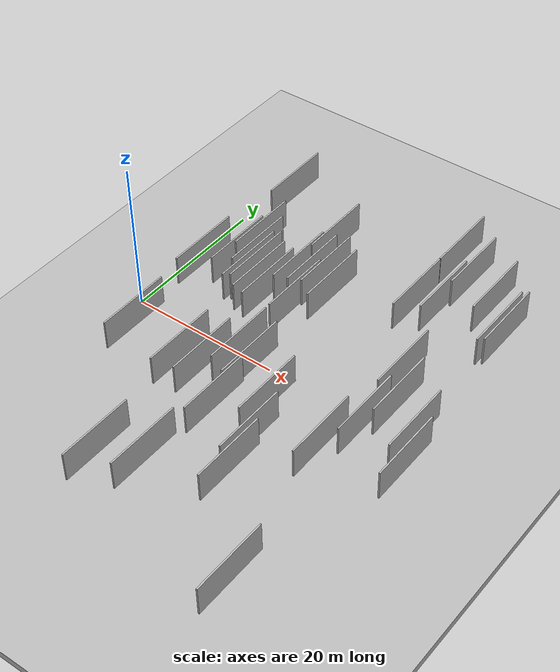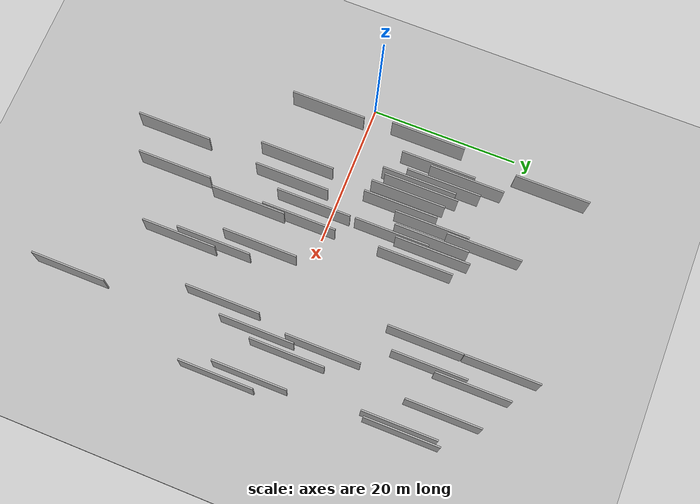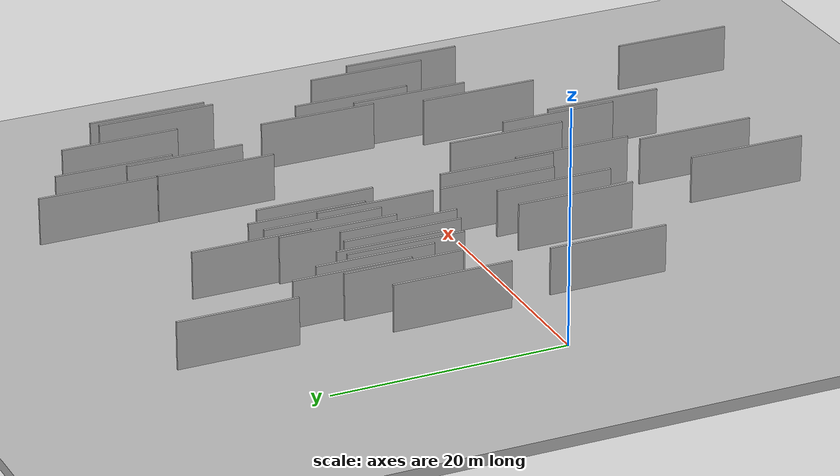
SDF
<?xml version="1.0" encoding="utf-8"?>

<sdf version="1.6">

   <world name="default">

      <gui fullscreen="0">

         <camera name="user_camera">

            <pose>-15 0 4.57585 0 0 0</pose>

            <view_controller>orbit</view_controller>

         </camera>

      </gui>

      <scene>

         <sky>

           <clouds>

             <speed>12</speed>

           </clouds>

         </sky>

         <ambient>0.4 0.4 0.4 1</ambient>

         <background>0.7 0.7 0.7 1</background>

         <shadows>1</shadows>

      </scene>

      <gravity>0 0 -9.8066</gravity>

      <magnetic_field>6e-06 2.3e-05 -4.2e-05</magnetic_field>

      <physics default="0" name="default_physics" type="ode">

         <ode>

            <solver>

               <type>quick</type>

               <iters>10</iters>

               <sor>1.0</sor>

               <use_dynamic_moi_rescaling>0</use_dynamic_moi_rescaling>

            </solver>

            <constraints>

               <cfm>0</cfm>

               <erp>0.2</erp>

               <contact_max_correcting_vel>100</contact_max_correcting_vel>

               <contact_surface_layer>0.001</contact_surface_layer>

            </constraints>

         </ode>

         <max_step_size>0.004</max_step_size>

         <real_time_factor>1</real_time_factor>

         <real_time_update_rate>250</real_time_update_rate>

      </physics>

      <light name="sun" type="directional">

         <cast_shadows>1</cast_shadows>

         <pose>0 0 10 0 0 0</pose>

         <diffuse>0.8 0.8 0.8 1</diffuse>

         <specular>0.2 0.2 0.2 1</specular>

         <attenuation>

            <range>1000</range>

            <constant>0.9</constant>

            <linear>0.01</linear>

            <quadratic>0.001</quadratic>

         </attenuation>

         <direction>-0.5 0.1 -0.9</direction>

      </light>

      <include>

         <name>ground_plane_1</name>

         <uri>model://HANNAS_ground_plane</uri>

         <pose>0 0 0  0 0 0</pose>

      </include>

      <include>

         <name>ground_plane_2</name>

         <uri>model://HANNAS_ground_plane</uri>

         <pose>100 0 0  0 0 0</pose>

      </include>

      <model name="HANNAS_wall_1">

         <static>1</static>

         <pose frame="">27.5334 -16.5251 2.5 0.000000 0.000000 1.570796</pose>

         <link name="link">

            <pose frame="">0 0 2.00 0 0 0</pose>

            <collision name="collision">

               <geometry>

                  <box>

                     <size>10.00 0.2 4.00</size>

                  </box>

               </geometry>

               <max_contacts>10</max_contacts>

               <surface>

                  <contact>

                     <ode/>

                  </contact>

                  <bounce/>

                  <friction>

                     <torsional>

                        <ode/>

                     </torsional>

                     <ode/>

                  </friction>

               </surface>

            </collision>

            <visual name="visual">

               <cast_shadows>0</cast_shadows>

               <geometry>

                  <box>

                     <size>10.00 0.2 4.00</size>

                  </box>

               </geometry>

               <material>

                  <script>

                     <uri>model://HANNAS_wall/materials/scripts</uri>

                     <uri>model://HANNAS_wall/materials/textures</uri>

                     <name>vrc/HANNAS_wall</name>

                  </script>

               </material>

            </visual>

            <self_collide>0</self_collide>

            <enable_wind>0</enable_wind>

            <kinematic>0</kinematic>

         </link>

      </model>

      <model name="HANNAS_wall_2">

         <static>1</static>

         <pose frame="">14.3433 -22.9168 2.5 0.000000 0.000000 1.570796</pose>

         <link name="link">

            <pose frame="">0 0 2.00 0 0 0</pose>

            <collision name="collision">

               <geometry>

                  <box>

                     <size>10.00 0.2 4.00</size>

                  </box>

               </geometry>

               <max_contacts>10</max_contacts>

               <surface>

                  <contact>

                     <ode/>

                  </contact>

                  <bounce/>

                  <friction>

                     <torsional>

                        <ode/>

                     </torsional>

                     <ode/>

                  </friction>

               </surface>

            </collision>

            <visual name="visual">

               <cast_shadows>0</cast_shadows>

               <geometry>

                  <box>

                     <size>10.00 0.2 4.00</size>

                  </box>

               </geometry>

               <material>

                  <script>

                     <uri>model://HANNAS_wall/materials/scripts</uri>

                     <uri>model://HANNAS_wall/materials/textures</uri>

                     <name>vrc/HANNAS_wall</name>

                  </script>

               </material>

            </visual>

            <self_collide>0</self_collide>

            <enable_wind>0</enable_wind>

            <kinematic>0</kinematic>

         </link>

      </model>

      <model name="HANNAS_wall_3">

         <static>1</static>

         <pose frame="">32.1765 24.7229 2.5 0.000000 0.000000 1.570796</pose>

         <link name="link">

            <pose frame="">0 0 2.00 0 0 0</pose>

            <collision name="collision">

               <geometry>

                  <box>

                     <size>10.00 0.2 4.00</size>

                  </box>

               </geometry>

               <max_contacts>10</max_contacts>

               <surface>

                  <contact>

                     <ode/>

                  </contact>

                  <bounce/>

                  <friction>

                     <torsional>

                        <ode/>

                     </torsional>

                     <ode/>

                  </friction>

               </surface>

            </collision>

            <visual name="visual">

               <cast_shadows>0</cast_shadows>

               <geometry>

                  <box>

                     <size>10.00 0.2 4.00</size>

                  </box>

               </geometry>

               <material>

                  <script>

                     <uri>model://HANNAS_wall/materials/scripts</uri>

                     <uri>model://HANNAS_wall/materials/textures</uri>

                     <name>vrc/HANNAS_wall</name>

                  </script>

               </material>

            </visual>

            <self_collide>0</self_collide>

            <enable_wind>0</enable_wind>

            <kinematic>0</kinematic>

         </link>

      </model>

      <model name="HANNAS_wall_4">

         <static>1</static>

         <pose frame="">9.5875 9.3693 2.5 0.000000 0.000000 1.570796</pose>

         <link name="link">

            <pose frame="">0 0 2.00 0 0 0</pose>

            <collision name="collision">

               <geometry>

                  <box>

                     <size>10.00 0.2 4.00</size>

                  </box>

               </geometry>

               <max_contacts>10</max_contacts>

               <surface>

                  <contact>

                     <ode/>

                  </contact>

                  <bounce/>

                  <friction>

                     <torsional>

                        <ode/>

                     </torsional>

                     <ode/>

                  </friction>

               </surface>

            </collision>

            <visual name="visual">

               <cast_shadows>0</cast_shadows>

               <geometry>

                  <box>

                     <size>10.00 0.2 4.00</size>

                  </box>

               </geometry>

               <material>

                  <script>

                     <uri>model://HANNAS_wall/materials/scripts</uri>

                     <uri>model://HANNAS_wall/materials/textures</uri>

                     <name>vrc/HANNAS_wall</name>

                  </script>

               </material>

            </visual>

            <self_collide>0</self_collide>

            <enable_wind>0</enable_wind>

            <kinematic>0</kinematic>

         </link>

      </model>

      <model name="HANNAS_wall_5">

         <static>1</static>

         <pose frame="">36.6109 22.4675 2.5 0.000000 0.000000 1.570796</pose>

         <link name="link">

            <pose frame="">0 0 2.00 0 0 0</pose>

            <collision name="collision">

               <geometry>

                  <box>

                     <size>10.00 0.2 4.00</size>

                  </box>

               </geometry>

               <max_contacts>10</max_contacts>

               <surface>

                  <contact>

                     <ode/>

                  </contact>

                  <bounce/>

                  <friction>

                     <torsional>

                        <ode/>

                     </torsional>

                     <ode/>

                  </friction>

               </surface>

            </collision>

            <visual name="visual">

               <cast_shadows>0</cast_shadows>

               <geometry>

                  <box>

                     <size>10.00 0.2 4.00</size>

                  </box>

               </geometry>

               <material>

                  <script>

                     <uri>model://HANNAS_wall/materials/scripts</uri>

                     <uri>model://HANNAS_wall/materials/textures</uri>

                     <name>vrc/HANNAS_wall</name>

                  </script>

               </material>

            </visual>

            <self_collide>0</self_collide>

            <enable_wind>0</enable_wind>

            <kinematic>0</kinematic>

         </link>

      </model>

      <model name="HANNAS_wall_6">

         <static>1</static>

         <pose frame="">24.8940 -6.5168 2.5 0.000000 0.000000 1.570796</pose>

         <link name="link">

            <pose frame="">0 0 2.00 0 0 0</pose>

            <collision name="collision">

               <geometry>

                  <box>

                     <size>10.00 0.2 4.00</size>

                  </box>

               </geometry>

               <max_contacts>10</max_contacts>

               <surface>

                  <contact>

                     <ode/>

                  </contact>

                  <bounce/>

                  <friction>

                     <torsional>

                        <ode/>

                     </torsional>

                     <ode/>

                  </friction>

               </surface>

            </collision>

            <visual name="visual">

               <cast_shadows>0</cast_shadows>

               <geometry>

                  <box>

                     <size>10.00 0.2 4.00</size>

                  </box>

               </geometry>

               <material>

                  <script>

                     <uri>model://HANNAS_wall/materials/scripts</uri>

                     <uri>model://HANNAS_wall/materials/textures</uri>

                     <name>vrc/HANNAS_wall</name>

                  </script>

               </material>

            </visual>

            <self_collide>0</self_collide>

            <enable_wind>0</enable_wind>

            <kinematic>0</kinematic>

         </link>

      </model>

      <model name="HANNAS_wall_7">

         <static>1</static>

         <pose frame="">35.3294 -2.6128 2.5 0.000000 0.000000 1.570796</pose>

         <link name="link">

            <pose frame="">0 0 2.00 0 0 0</pose>

            <collision name="collision">

               <geometry>

                  <box>

                     <size>10.00 0.2 4.00</size>

                  </box>

               </geometry>

               <max_contacts>10</max_contacts>

               <surface>

                  <contact>

                     <ode/>

                  </contact>

                  <bounce/>

                  <friction>

                     <torsional>

                        <ode/>

                     </torsional>

                     <ode/>

                  </friction>

               </surface>

            </collision>

            <visual name="visual">

               <cast_shadows>0</cast_shadows>

               <geometry>

                  <box>

                     <size>10.00 0.2 4.00</size>

                  </box>

               </geometry>

               <material>

                  <script>

                     <uri>model://HANNAS_wall/materials/scripts</uri>

                     <uri>model://HANNAS_wall/materials/textures</uri>

                     <name>vrc/HANNAS_wall</name>

                  </script>

               </material>

            </visual>

            <self_collide>0</self_collide>

            <enable_wind>0</enable_wind>

            <kinematic>0</kinematic>

         </link>

      </model>

      <model name="HANNAS_wall_8">

         <static>1</static>

         <pose frame="">14.5421 12.9286 2.5 0.000000 0.000000 1.570796</pose>

         <link name="link">

            <pose frame="">0 0 2.00 0 0 0</pose>

            <collision name="collision">

               <geometry>

                  <box>

                     <size>10.00 0.2 4.00</size>

                  </box>

               </geometry>

               <max_contacts>10</max_contacts>

               <surface>

                  <contact>

                     <ode/>

                  </contact>

                  <bounce/>

                  <friction>

                     <torsional>

                        <ode/>

                     </torsional>

                     <ode/>

                  </friction>

               </surface>

            </collision>

            <visual name="visual">

               <cast_shadows>0</cast_shadows>

               <geometry>

                  <box>

                     <size>10.00 0.2 4.00</size>

                  </box>

               </geometry>

               <material>

                  <script>

                     <uri>model://HANNAS_wall/materials/scripts</uri>

                     <uri>model://HANNAS_wall/materials/textures</uri>

                     <name>vrc/HANNAS_wall</name>

                  </script>

               </material>

            </visual>

            <self_collide>0</self_collide>

            <enable_wind>0</enable_wind>

            <kinematic>0</kinematic>

         </link>

      </model>

      <model name="HANNAS_wall_9">

         <static>1</static>

         <pose frame="">3.3125 8.3041 2.5 0.000000 0.000000 1.570796</pose>

         <link name="link">

            <pose frame="">0 0 2.00 0 0 0</pose>

            <collision name="collision">

               <geometry>

                  <box>

                     <size>10.00 0.2 4.00</size>

                  </box>

               </geometry>

               <max_contacts>10</max_contacts>

               <surface>

                  <contact>

                     <ode/>

                  </contact>

                  <bounce/>

                  <friction>

                     <torsional>

                        <ode/>

                     </torsional>

                     <ode/>

                  </friction>

               </surface>

            </collision>

            <visual name="visual">

               <cast_shadows>0</cast_shadows>

               <geometry>

                  <box>

                     <size>10.00 0.2 4.00</size>

                  </box>

               </geometry>

               <material>

                  <script>

                     <uri>model://HANNAS_wall/materials/scripts</uri>

                     <uri>model://HANNAS_wall/materials/textures</uri>

                     <name>vrc/HANNAS_wall</name>

                  </script>

               </material>

            </visual>

            <self_collide>0</self_collide>

            <enable_wind>0</enable_wind>

            <kinematic>0</kinematic>

         </link>

      </model>

      <model name="HANNAS_wall_10">

         <static>1</static>

         <pose frame="">11.7947 8.6516 2.5 0.000000 0.000000 1.570796</pose>

         <link name="link">

            <pose frame="">0 0 2.00 0 0 0</pose>

            <collision name="collision">

               <geometry>

                  <box>

                     <size>10.00 0.2 4.00</size>

                  </box>

               </geometry>

               <max_contacts>10</max_contacts>

               <surface>

                  <contact>

                     <ode/>

                  </contact>

                  <bounce/>

                  <friction>

                     <torsional>

                        <ode/>

                     </torsional>

                     <ode/>

                  </friction>

               </surface>

            </collision>

            <visual name="visual">

               <cast_shadows>0</cast_shadows>

               <geometry>

                  <box>

                     <size>10.00 0.2 4.00</size>

                  </box>

               </geometry>

               <material>

                  <script>

                     <uri>model://HANNAS_wall/materials/scripts</uri>

                     <uri>model://HANNAS_wall/materials/textures</uri>

                     <name>vrc/HANNAS_wall</name>

                  </script>

               </material>

            </visual>

            <self_collide>0</self_collide>

            <enable_wind>0</enable_wind>

            <kinematic>0</kinematic>

         </link>

      </model>

      <model name="HANNAS_wall_11">

         <static>1</static>

         <pose frame="">14.8966 20.0811 2.5 0.000000 0.000000 1.570796</pose>

         <link name="link">

            <pose frame="">0 0 2.00 0 0 0</pose>

            <collision name="collision">

               <geometry>

                  <box>

                     <size>10.00 0.2 4.00</size>

                  </box>

               </geometry>

               <max_contacts>10</max_contacts>

               <surface>

                  <contact>

                     <ode/>

                  </contact>

                  <bounce/>

                  <friction>

                     <torsional>

                        <ode/>

                     </torsional>

                     <ode/>

                  </friction>

               </surface>

            </collision>

            <visual name="visual">

               <cast_shadows>0</cast_shadows>

               <geometry>

                  <box>

                     <size>10.00 0.2 4.00</size>

                  </box>

               </geometry>

               <material>

                  <script>

                     <uri>model://HANNAS_wall/materials/scripts</uri>

                     <uri>model://HANNAS_wall/materials/textures</uri>

                     <name>vrc/HANNAS_wall</name>

                  </script>

               </material>

            </visual>

            <self_collide>0</self_collide>

            <enable_wind>0</enable_wind>

            <kinematic>0</kinematic>

         </link>

      </model>

      <model name="HANNAS_wall_12">

         <static>1</static>

         <pose frame="">19.8237 12.6126 2.5 0.000000 0.000000 1.570796</pose>

         <link name="link">

            <pose frame="">0 0 2.00 0 0 0</pose>

            <collision name="collision">

               <geometry>

                  <box>

                     <size>10.00 0.2 4.00</size>

                  </box>

               </geometry>

               <max_contacts>10</max_contacts>

               <surface>

                  <contact>

                     <ode/>

                  </contact>

                  <bounce/>

                  <friction>

                     <torsional>

                        <ode/>

                     </torsional>

                     <ode/>

                  </friction>

               </surface>

            </collision>

            <visual name="visual">

               <cast_shadows>0</cast_shadows>

               <geometry>

                  <box>

                     <size>10.00 0.2 4.00</size>

                  </box>

               </geometry>

               <material>

                  <script>

                     <uri>model://HANNAS_wall/materials/scripts</uri>

                     <uri>model://HANNAS_wall/materials/textures</uri>

                     <name>vrc/HANNAS_wall</name>

                  </script>

               </material>

            </visual>

            <self_collide>0</self_collide>

            <enable_wind>0</enable_wind>

            <kinematic>0</kinematic>

         </link>

      </model>

      <model name="HANNAS_wall_13">

         <static>1</static>

         <pose frame="">15.1489 -6.0615 2.5 0.000000 0.000000 1.570796</pose>

         <link name="link">

            <pose frame="">0 0 2.00 0 0 0</pose>

            <collision name="collision">

               <geometry>

                  <box>

                     <size>10.00 0.2 4.00</size>

                  </box>

               </geometry>

               <max_contacts>10</max_contacts>

               <surface>

                  <contact>

                     <ode/>

                  </contact>

                  <bounce/>

                  <friction>

                     <torsional>

                        <ode/>

                     </torsional>

                     <ode/>

                  </friction>

               </surface>

            </collision>

            <visual name="visual">

               <cast_shadows>0</cast_shadows>

               <geometry>

                  <box>

                     <size>10.00 0.2 4.00</size>

                  </box>

               </geometry>

               <material>

                  <script>

                     <uri>model://HANNAS_wall/materials/scripts</uri>

                     <uri>model://HANNAS_wall/materials/textures</uri>

                     <name>vrc/HANNAS_wall</name>

                  </script>

               </material>

            </visual>

            <self_collide>0</self_collide>

            <enable_wind>0</enable_wind>

            <kinematic>0</kinematic>

         </link>

      </model>

      <model name="HANNAS_wall_14">

         <static>1</static>

         <pose frame="">19.2106 -20.7530 2.5 0.000000 0.000000 1.570796</pose>

         <link name="link">

            <pose frame="">0 0 2.00 0 0 0</pose>

            <collision name="collision">

               <geometry>

                  <box>

                     <size>10.00 0.2 4.00</size>

                  </box>

               </geometry>

               <max_contacts>10</max_contacts>

               <surface>

                  <contact>

                     <ode/>

                  </contact>

                  <bounce/>

                  <friction>

                     <torsional>

                        <ode/>

                     </torsional>

                     <ode/>

                  </friction>

               </surface>

            </collision>

            <visual name="visual">

               <cast_shadows>0</cast_shadows>

               <geometry>

                  <box>

                     <size>10.00 0.2 4.00</size>

                  </box>

               </geometry>

               <material>

                  <script>

                     <uri>model://HANNAS_wall/materials/scripts</uri>

                     <uri>model://HANNAS_wall/materials/textures</uri>

                     <name>vrc/HANNAS_wall</name>

                  </script>

               </material>

            </visual>

            <self_collide>0</self_collide>

            <enable_wind>0</enable_wind>

            <kinematic>0</kinematic>

         </link>

      </model>

      <model name="HANNAS_wall_15">

         <static>1</static>

         <pose frame="">10.3399 9.9173 2.5 0.000000 0.000000 1.570796</pose>

         <link name="link">

            <pose frame="">0 0 2.00 0 0 0</pose>

            <collision name="collision">

               <geometry>

                  <box>

                     <size>10.00 0.2 4.00</size>

                  </box>

               </geometry>

               <max_contacts>10</max_contacts>

               <surface>

                  <contact>

                     <ode/>

                  </contact>

                  <bounce/>

                  <friction>

                     <torsional>

                        <ode/>

                     </torsional>

                     <ode/>

                  </friction>

               </surface>

            </collision>

            <visual name="visual">

               <cast_shadows>0</cast_shadows>

               <geometry>

                  <box>

                     <size>10.00 0.2 4.00</size>

                  </box>

               </geometry>

               <material>

                  <script>

                     <uri>model://HANNAS_wall/materials/scripts</uri>

                     <uri>model://HANNAS_wall/materials/textures</uri>

                     <name>vrc/HANNAS_wall</name>

                  </script>

               </material>

            </visual>

            <self_collide>0</self_collide>

            <enable_wind>0</enable_wind>

            <kinematic>0</kinematic>

         </link>

      </model>

      <model name="HANNAS_wall_16">

         <static>1</static>

         <pose frame="">13.4507 8.2535 2.5 0.000000 0.000000 1.570796</pose>

         <link name="link">

            <pose frame="">0 0 2.00 0 0 0</pose>

            <collision name="collision">

               <geometry>

                  <box>

                     <size>10.00 0.2 4.00</size>

                  </box>

               </geometry>

               <max_contacts>10</max_contacts>

               <surface>

                  <contact>

                     <ode/>

                  </contact>

                  <bounce/>

                  <friction>

                     <torsional>

                        <ode/>

                     </torsional>

                     <ode/>

                  </friction>

               </surface>

            </collision>

            <visual name="visual">

               <cast_shadows>0</cast_shadows>

               <geometry>

                  <box>

                     <size>10.00 0.2 4.00</size>

                  </box>

               </geometry>

               <material>

                  <script>

                     <uri>model://HANNAS_wall/materials/scripts</uri>

                     <uri>model://HANNAS_wall/materials/textures</uri>

                     <name>vrc/HANNAS_wall</name>

                  </script>

               </material>

            </visual>

            <self_collide>0</self_collide>

            <enable_wind>0</enable_wind>

            <kinematic>0</kinematic>

         </link>

      </model>

      <model name="HANNAS_wall_17">

         <static>1</static>

         <pose frame="">17.3730 -2.1441 2.5 0.000000 0.000000 1.570796</pose>

         <link name="link">

            <pose frame="">0 0 2.00 0 0 0</pose>

            <collision name="collision">

               <geometry>

                  <box>

                     <size>10.00 0.2 4.00</size>

                  </box>

               </geometry>

               <max_contacts>10</max_contacts>

               <surface>

                  <contact>

                     <ode/>

                  </contact>

                  <bounce/>

                  <friction>

                     <torsional>

                        <ode/>

                     </torsional>

                     <ode/>

                  </friction>

               </surface>

            </collision>

            <visual name="visual">

               <cast_shadows>0</cast_shadows>

               <geometry>

                  <box>

                     <size>10.00 0.2 4.00</size>

                  </box>

               </geometry>

               <material>

                  <script>

                     <uri>model://HANNAS_wall/materials/scripts</uri>

                     <uri>model://HANNAS_wall/materials/textures</uri>

                     <name>vrc/HANNAS_wall</name>

                  </script>

               </material>

            </visual>

            <self_collide>0</self_collide>

            <enable_wind>0</enable_wind>

            <kinematic>0</kinematic>

         </link>

      </model>

      <model name="HANNAS_wall_18">

         <static>1</static>

         <pose frame="">33.3802 -8.0274 2.5 0.000000 0.000000 1.570796</pose>

         <link name="link">

            <pose frame="">0 0 2.00 0 0 0</pose>

            <collision name="collision">

               <geometry>

                  <box>

                     <size>10.00 0.2 4.00</size>

                  </box>

               </geometry>

               <max_contacts>10</max_contacts>

               <surface>

                  <contact>

                     <ode/>

                  </contact>

                  <bounce/>

                  <friction>

                     <torsional>

                        <ode/>

                     </torsional>

                     <ode/>

                  </friction>

               </surface>

            </collision>

            <visual name="visual">

               <cast_shadows>0</cast_shadows>

               <geometry>

                  <box>

                     <size>10.00 0.2 4.00</size>

                  </box>

               </geometry>

               <material>

                  <script>

                     <uri>model://HANNAS_wall/materials/scripts</uri>

                     <uri>model://HANNAS_wall/materials/textures</uri>

                     <name>vrc/HANNAS_wall</name>

                  </script>

               </material>

            </visual>

            <self_collide>0</self_collide>

            <enable_wind>0</enable_wind>

            <kinematic>0</kinematic>

         </link>

      </model>

      <model name="HANNAS_wall_19">

         <static>1</static>

         <pose frame="">16.2258 13.4867 2.5 0.000000 0.000000 1.570796</pose>

         <link name="link">

            <pose frame="">0 0 2.00 0 0 0</pose>

            <collision name="collision">

               <geometry>

                  <box>

                     <size>10.00 0.2 4.00</size>

                  </box>

               </geometry>

               <max_contacts>10</max_contacts>

               <surface>

                  <contact>

                     <ode/>

                  </contact>

                  <bounce/>

                  <friction>

                     <torsional>

                        <ode/>

                     </torsional>

                     <ode/>

                  </friction>

               </surface>

            </collision>

            <visual name="visual">

               <cast_shadows>0</cast_shadows>

               <geometry>

                  <box>

                     <size>10.00 0.2 4.00</size>

                  </box>

               </geometry>

               <material>

                  <script>

                     <uri>model://HANNAS_wall/materials/scripts</uri>

                     <uri>model://HANNAS_wall/materials/textures</uri>

                     <name>vrc/HANNAS_wall</name>

                  </script>

               </material>

            </visual>

            <self_collide>0</self_collide>

            <enable_wind>0</enable_wind>

            <kinematic>0</kinematic>

         </link>

      </model>

      <model name="HANNAS_wall_20">

         <static>1</static>

         <pose frame="">36.7096 1.9951 2.5 0.000000 0.000000 1.570796</pose>

         <link name="link">

            <pose frame="">0 0 2.00 0 0 0</pose>

            <collision name="collision">

               <geometry>

                  <box>

                     <size>10.00 0.2 4.00</size>

                  </box>

               </geometry>

               <max_contacts>10</max_contacts>

               <surface>

                  <contact>

                     <ode/>

                  </contact>

                  <bounce/>

                  <friction>

                     <torsional>

                        <ode/>

                     </torsional>

                     <ode/>

                  </friction>

               </surface>

            </collision>

            <visual name="visual">

               <cast_shadows>0</cast_shadows>

               <geometry>

                  <box>

                     <size>10.00 0.2 4.00</size>

                  </box>

               </geometry>

               <material>

                  <script>

                     <uri>model://HANNAS_wall/materials/scripts</uri>

                     <uri>model://HANNAS_wall/materials/textures</uri>

                     <name>vrc/HANNAS_wall</name>

                  </script>

               </material>

            </visual>

            <self_collide>0</self_collide>

            <enable_wind>0</enable_wind>

            <kinematic>0</kinematic>

         </link>

      </model>

      <model name="HANNAS_wall_21">

         <static>1</static>

         <pose frame="">12.1963 -6.5241 2.5 0.000000 0.000000 1.570796</pose>

         <link name="link">

            <pose frame="">0 0 2.00 0 0 0</pose>

            <collision name="collision">

               <geometry>

                  <box>

                     <size>10.00 0.2 4.00</size>

                  </box>

               </geometry>

               <max_contacts>10</max_contacts>

               <surface>

                  <contact>

                     <ode/>

                  </contact>

                  <bounce/>

                  <friction>

                     <torsional>

                        <ode/>

                     </torsional>

                     <ode/>

                  </friction>

               </surface>

            </collision>

            <visual name="visual">

               <cast_shadows>0</cast_shadows>

               <geometry>

                  <box>

                     <size>10.00 0.2 4.00</size>

                  </box>

               </geometry>

               <material>

                  <script>

                     <uri>model://HANNAS_wall/materials/scripts</uri>

                     <uri>model://HANNAS_wall/materials/textures</uri>

                     <name>vrc/HANNAS_wall</name>

                  </script>

               </material>

            </visual>

            <self_collide>0</self_collide>

            <enable_wind>0</enable_wind>

            <kinematic>0</kinematic>

         </link>

      </model>

      <model name="HANNAS_wall_22">

         <static>1</static>

         <pose frame="">28.8559 17.2850 2.5 0.000000 0.000000 1.570796</pose>

         <link name="link">

            <pose frame="">0 0 2.00 0 0 0</pose>

            <collision name="collision">

               <geometry>

                  <box>

                     <size>10.00 0.2 4.00</size>

                  </box>

               </geometry>

               <max_contacts>10</max_contacts>

               <surface>

                  <contact>

                     <ode/>

                  </contact>

                  <bounce/>

                  <friction>

                     <torsional>

                        <ode/>

                     </torsional>

                     <ode/>

                  </friction>

               </surface>

            </collision>

            <visual name="visual">

               <cast_shadows>0</cast_shadows>

               <geometry>

                  <box>

                     <size>10.00 0.2 4.00</size>

                  </box>

               </geometry>

               <material>

                  <script>

                     <uri>model://HANNAS_wall/materials/scripts</uri>

                     <uri>model://HANNAS_wall/materials/textures</uri>

                     <name>vrc/HANNAS_wall</name>

                  </script>

               </material>

            </visual>

            <self_collide>0</self_collide>

            <enable_wind>0</enable_wind>

            <kinematic>0</kinematic>

         </link>

      </model>

      <model name="HANNAS_wall_23">

         <static>1</static>

         <pose frame="">7.0879 14.9931 2.5 0.000000 0.000000 1.570796</pose>

         <link name="link">

            <pose frame="">0 0 2.00 0 0 0</pose>

            <collision name="collision">

               <geometry>

                  <box>

                     <size>10.00 0.2 4.00</size>

                  </box>

               </geometry>

               <max_contacts>10</max_contacts>

               <surface>

                  <contact>

                     <ode/>

                  </contact>

                  <bounce/>

                  <friction>

                     <torsional>

                        <ode/>

                     </torsional>

                     <ode/>

                  </friction>

               </surface>

            </collision>

            <visual name="visual">

               <cast_shadows>0</cast_shadows>

               <geometry>

                  <box>

                     <size>10.00 0.2 4.00</size>

                  </box>

               </geometry>

               <material>

                  <script>

                     <uri>model://HANNAS_wall/materials/scripts</uri>

                     <uri>model://HANNAS_wall/materials/textures</uri>

                     <name>vrc/HANNAS_wall</name>

                  </script>

               </material>

            </visual>

            <self_collide>0</self_collide>

            <enable_wind>0</enable_wind>

            <kinematic>0</kinematic>

         </link>

      </model>

      <model name="HANNAS_wall_24">

         <static>1</static>

         <pose frame="">40.5576 18.5346 2.5 0.000000 0.000000 1.570796</pose>

         <link name="link">

            <pose frame="">0 0 2.00 0 0 0</pose>

            <collision name="collision">

               <geometry>

                  <box>

                     <size>10.00 0.2 4.00</size>

                  </box>

               </geometry>

               <max_contacts>10</max_contacts>

               <surface>

                  <contact>

                     <ode/>

                  </contact>

                  <bounce/>

                  <friction>

                     <torsional>

                        <ode/>

                     </torsional>

                     <ode/>

                  </friction>

               </surface>

            </collision>

            <visual name="visual">

               <cast_shadows>0</cast_shadows>

               <geometry>

                  <box>

                     <size>10.00 0.2 4.00</size>

                  </box>

               </geometry>

               <material>

                  <script>

                     <uri>model://HANNAS_wall/materials/scripts</uri>

                     <uri>model://HANNAS_wall/materials/textures</uri>

                     <name>vrc/HANNAS_wall</name>

                  </script>

               </material>

            </visual>

            <self_collide>0</self_collide>

            <enable_wind>0</enable_wind>

            <kinematic>0</kinematic>

         </link>

      </model>

      <model name="HANNAS_wall_25">

         <static>1</static>

         <pose frame="">42.4357 -5.0856 2.5 0.000000 0.000000 1.570796</pose>

         <link name="link">

            <pose frame="">0 0 2.00 0 0 0</pose>

            <collision name="collision">

               <geometry>

                  <box>

                     <size>10.00 0.2 4.00</size>

                  </box>

               </geometry>

               <max_contacts>10</max_contacts>

               <surface>

                  <contact>

                     <ode/>

                  </contact>

                  <bounce/>

                  <friction>

                     <torsional>

                        <ode/>

                     </torsional>

                     <ode/>

                  </friction>

               </surface>

            </collision>

            <visual name="visual">

               <cast_shadows>0</cast_shadows>

               <geometry>

                  <box>

                     <size>10.00 0.2 4.00</size>

                  </box>

               </geometry>

               <material>

                  <script>

                     <uri>model://HANNAS_wall/materials/scripts</uri>

                     <uri>model://HANNAS_wall/materials/textures</uri>

                     <name>vrc/HANNAS_wall</name>

                  </script>

               </material>

            </visual>

            <self_collide>0</self_collide>

            <enable_wind>0</enable_wind>

            <kinematic>0</kinematic>

         </link>

      </model>

      <model name="HANNAS_wall_26">

         <static>1</static>

         <pose frame="">40.9899 -1.2519 2.5 0.000000 0.000000 1.570796</pose>

         <link name="link">

            <pose frame="">0 0 2.00 0 0 0</pose>

            <collision name="collision">

               <geometry>

                  <box>

                     <size>10.00 0.2 4.00</size>

                  </box>

               </geometry>

               <max_contacts>10</max_contacts>

               <surface>

                  <contact>

                     <ode/>

                  </contact>

                  <bounce/>

                  <friction>

                     <torsional>

                        <ode/>

                     </torsional>

                     <ode/>

                  </friction>

               </surface>

            </collision>

            <visual name="visual">

               <cast_shadows>0</cast_shadows>

               <geometry>

                  <box>

                     <size>10.00 0.2 4.00</size>

                  </box>

               </geometry>

               <material>

                  <script>

                     <uri>model://HANNAS_wall/materials/scripts</uri>

                     <uri>model://HANNAS_wall/materials/textures</uri>

                     <name>vrc/HANNAS_wall</name>

                  </script>

               </material>

            </visual>

            <self_collide>0</self_collide>

            <enable_wind>0</enable_wind>

            <kinematic>0</kinematic>

         </link>

      </model>

      <model name="HANNAS_wall_27">

         <static>1</static>

         <pose frame="">4.3468 25.6353 2.5 0.000000 0.000000 1.570796</pose>

         <link name="link">

            <pose frame="">0 0 2.00 0 0 0</pose>

            <collision name="collision">

               <geometry>

                  <box>

                     <size>10.00 0.2 4.00</size>

                  </box>

               </geometry>

               <max_contacts>10</max_contacts>

               <surface>

                  <contact>

                     <ode/>

                  </contact>

                  <bounce/>

                  <friction>

                     <torsional>

                        <ode/>

                     </torsional>

                     <ode/>

                  </friction>

               </surface>

            </collision>

            <visual name="visual">

               <cast_shadows>0</cast_shadows>

               <geometry>

                  <box>

                     <size>10.00 0.2 4.00</size>

                  </box>

               </geometry>

               <material>

                  <script>

                     <uri>model://HANNAS_wall/materials/scripts</uri>

                     <uri>model://HANNAS_wall/materials/textures</uri>

                     <name>vrc/HANNAS_wall</name>

                  </script>

               </material>

            </visual>

            <self_collide>0</self_collide>

            <enable_wind>0</enable_wind>

            <kinematic>0</kinematic>

         </link>

      </model>

      <model name="HANNAS_wall_28">

         <static>1</static>

         <pose frame="">26.7748 -12.0916 2.5 0.000000 0.000000 1.570796</pose>

         <link name="link">

            <pose frame="">0 0 2.00 0 0 0</pose>

            <collision name="collision">

               <geometry>

                  <box>

                     <size>10.00 0.2 4.00</size>

                  </box>

               </geometry>

               <max_contacts>10</max_contacts>

               <surface>

                  <contact>

                     <ode/>

                  </contact>

                  <bounce/>

                  <friction>

                     <torsional>

                        <ode/>

                     </torsional>

                     <ode/>

                  </friction>

               </surface>

            </collision>

            <visual name="visual">

               <cast_shadows>0</cast_shadows>

               <geometry>

                  <box>

                     <size>10.00 0.2 4.00</size>

                  </box>

               </geometry>

               <material>

                  <script>

                     <uri>model://HANNAS_wall/materials/scripts</uri>

                     <uri>model://HANNAS_wall/materials/textures</uri>

                     <name>vrc/HANNAS_wall</name>

                  </script>

               </material>

            </visual>

            <self_collide>0</self_collide>

            <enable_wind>0</enable_wind>

            <kinematic>0</kinematic>

         </link>

      </model>

      <model name="HANNAS_wall_29">

         <static>1</static>

         <pose frame="">20.1613 -10.0863 2.5 0.000000 0.000000 1.570796</pose>

         <link name="link">

            <pose frame="">0 0 2.00 0 0 0</pose>

            <collision name="collision">

               <geometry>

                  <box>

                     <size>10.00 0.2 4.00</size>

                  </box>

               </geometry>

               <max_contacts>10</max_contacts>

               <surface>

                  <contact>

                     <ode/>

                  </contact>

                  <bounce/>

                  <friction>

                     <torsional>

                        <ode/>

                     </torsional>

                     <ode/>

                  </friction>

               </surface>

            </collision>

            <visual name="visual">

               <cast_shadows>0</cast_shadows>

               <geometry>

                  <box>

                     <size>10.00 0.2 4.00</size>

                  </box>

               </geometry>

               <material>

                  <script>

                     <uri>model://HANNAS_wall/materials/scripts</uri>

                     <uri>model://HANNAS_wall/materials/textures</uri>

                     <name>vrc/HANNAS_wall</name>

                  </script>

               </material>

            </visual>

            <self_collide>0</self_collide>

            <enable_wind>0</enable_wind>

            <kinematic>0</kinematic>

         </link>

      </model>

      <model name="HANNAS_wall_30">

         <static>1</static>

         <pose frame="">36.7127 -27.6821 2.5 0.000000 0.000000 1.570796</pose>

         <link name="link">

            <pose frame="">0 0 2.00 0 0 0</pose>

            <collision name="collision">

               <geometry>

                  <box>

                     <size>10.00 0.2 4.00</size>

                  </box>

               </geometry>

               <max_contacts>10</max_contacts>

               <surface>

                  <contact>

                     <ode/>

                  </contact>

                  <bounce/>

                  <friction>

                     <torsional>

                        <ode/>

                     </torsional>

                     <ode/>

                  </friction>

               </surface>

            </collision>

            <visual name="visual">

               <cast_shadows>0</cast_shadows>

               <geometry>

                  <box>

                     <size>10.00 0.2 4.00</size>

                  </box>

               </geometry>

               <material>

                  <script>

                     <uri>model://HANNAS_wall/materials/scripts</uri>

                     <uri>model://HANNAS_wall/materials/textures</uri>

                     <name>vrc/HANNAS_wall</name>

                  </script>

               </material>

            </visual>

            <self_collide>0</self_collide>

            <enable_wind>0</enable_wind>

            <kinematic>0</kinematic>

         </link>

      </model>

      <model name="HANNAS_wall_31">

         <static>1</static>

         <pose frame="">34.5970 5.9348 2.5 0.000000 0.000000 1.570796</pose>

         <link name="link">

            <pose frame="">0 0 2.00 0 0 0</pose>

            <collision name="collision">

               <geometry>

                  <box>

                     <size>10.00 0.2 4.00</size>

                  </box>

               </geometry>

               <max_contacts>10</max_contacts>

               <surface>

                  <contact>

                     <ode/>

                  </contact>

                  <bounce/>

                  <friction>

                     <torsional>

                        <ode/>

                     </torsional>

                     <ode/>

                  </friction>

               </surface>

            </collision>

            <visual name="visual">

               <cast_shadows>0</cast_shadows>

               <geometry>

                  <box>

                     <size>10.00 0.2 4.00</size>

                  </box>

               </geometry>

               <material>

                  <script>

                     <uri>model://HANNAS_wall/materials/scripts</uri>

                     <uri>model://HANNAS_wall/materials/textures</uri>

                     <name>vrc/HANNAS_wall</name>

                  </script>

               </material>

            </visual>

            <self_collide>0</self_collide>

            <enable_wind>0</enable_wind>

            <kinematic>0</kinematic>

         </link>

      </model>

      <model name="HANNAS_wall_32">

         <static>1</static>

         <pose frame="">31.6333 18.8408 2.5 0.000000 0.000000 1.570796</pose>

         <link name="link">

            <pose frame="">0 0 2.00 0 0 0</pose>

            <collision name="collision">

               <geometry>

                  <box>

                     <size>10.00 0.2 4.00</size>

                  </box>

               </geometry>

               <max_contacts>10</max_contacts>

               <surface>

                  <contact>

                     <ode/>

                  </contact>

                  <bounce/>

                  <friction>

                     <torsional>

                        <ode/>

                     </torsional>

                     <ode/>

                  </friction>

               </surface>

            </collision>

            <visual name="visual">

               <cast_shadows>0</cast_shadows>

               <geometry>

                  <box>

                     <size>10.00 0.2 4.00</size>

                  </box>

               </geometry>

               <material>

                  <script>

                     <uri>model://HANNAS_wall/materials/scripts</uri>

                     <uri>model://HANNAS_wall/materials/textures</uri>

                     <name>vrc/HANNAS_wall</name>

                  </script>

               </material>

            </visual>

            <self_collide>0</self_collide>

            <enable_wind>0</enable_wind>

            <kinematic>0</kinematic>

         </link>

      </model>

      <model name="HANNAS_wall_33">

         <static>1</static>

         <pose frame="">6.6276 10.9223 2.5 0.000000 0.000000 1.570796</pose>

         <link name="link">

            <pose frame="">0 0 2.00 0 0 0</pose>

            <collision name="collision">

               <geometry>

                  <box>

                     <size>10.00 0.2 4.00</size>

                  </box>

               </geometry>

               <max_contacts>10</max_contacts>

               <surface>

                  <contact>

                     <ode/>

                  </contact>

                  <bounce/>

                  <friction>

                     <torsional>

                        <ode/>

                     </torsional>

                     <ode/>

                  </friction>

               </surface>

            </collision>

            <visual name="visual">

               <cast_shadows>0</cast_shadows>

               <geometry>

                  <box>

                     <size>10.00 0.2 4.00</size>

                  </box>

               </geometry>

               <material>

                  <script>

                     <uri>model://HANNAS_wall/materials/scripts</uri>

                     <uri>model://HANNAS_wall/materials/textures</uri>

                     <name>vrc/HANNAS_wall</name>

                  </script>

               </material>

            </visual>

            <self_collide>0</self_collide>

            <enable_wind>0</enable_wind>

            <kinematic>0</kinematic>

         </link>

      </model>

      <model name="HANNAS_wall_34">

         <static>1</static>

         <pose frame="">17.7490 14.1705 2.5 0.000000 0.000000 1.570796</pose>

         <link name="link">

            <pose frame="">0 0 2.00 0 0 0</pose>

            <collision name="collision">

               <geometry>

                  <box>

                     <size>10.00 0.2 4.00</size>

                  </box>

               </geometry>

               <max_contacts>10</max_contacts>

               <surface>

                  <contact>

                     <ode/>

                  </contact>

                  <bounce/>

                  <friction>

                     <torsional>

                        <ode/>

                     </torsional>

                     <ode/>

                  </friction>

               </surface>

            </collision>

            <visual name="visual">

               <cast_shadows>0</cast_shadows>

               <geometry>

                  <box>

                     <size>10.00 0.2 4.00</size>

                  </box>

               </geometry>

               <material>

                  <script>

                     <uri>model://HANNAS_wall/materials/scripts</uri>

                     <uri>model://HANNAS_wall/materials/textures</uri>

                     <name>vrc/HANNAS_wall</name>

                  </script>

               </material>

            </visual>

            <self_collide>0</self_collide>

            <enable_wind>0</enable_wind>

            <kinematic>0</kinematic>

         </link>

      </model>

      <model name="HANNAS_wall_35">

         <static>1</static>

         <pose frame="">8.6470 12.3737 2.5 0.000000 0.000000 1.570796</pose>

         <link name="link">

            <pose frame="">0 0 2.00 0 0 0</pose>

            <collision name="collision">

               <geometry>

                  <box>

                     <size>10.00 0.2 4.00</size>

                  </box>

               </geometry>

               <max_contacts>10</max_contacts>

               <surface>

                  <contact>

                     <ode/>

                  </contact>

                  <bounce/>

                  <friction>

                     <torsional>

                        <ode/>

                     </torsional>

                     <ode/>

                  </friction>

               </surface>

            </collision>

            <visual name="visual">

               <cast_shadows>0</cast_shadows>

               <geometry>

                  <box>

                     <size>10.00 0.2 4.00</size>

                  </box>

               </geometry>

               <material>

                  <script>

                     <uri>model://HANNAS_wall/materials/scripts</uri>

                     <uri>model://HANNAS_wall/materials/textures</uri>

                     <name>vrc/HANNAS_wall</name>

                  </script>

               </material>

            </visual>

            <self_collide>0</self_collide>

            <enable_wind>0</enable_wind>

            <kinematic>0</kinematic>

         </link>

      </model>

      <model name="HANNAS_wall_36">

         <static>1</static>

         <pose frame="">4.0761 -5.3414 2.5 0.000000 0.000000 1.570796</pose>

         <link name="link">

            <pose frame="">0 0 2.00 0 0 0</pose>

            <collision name="collision">

               <geometry>

                  <box>

                     <size>10.00 0.2 4.00</size>

                  </box>

               </geometry>

               <max_contacts>10</max_contacts>

               <surface>

                  <contact>

                     <ode/>

                  </contact>

                  <bounce/>

                  <friction>

                     <torsional>

                        <ode/>

                     </torsional>

                     <ode/>

                  </friction>

               </surface>

            </collision>

            <visual name="visual">

               <cast_shadows>0</cast_shadows>

               <geometry>

                  <box>

                     <size>10.00 0.2 4.00</size>

                  </box>

               </geometry>

               <material>

                  <script>

                     <uri>model://HANNAS_wall/materials/scripts</uri>

                     <uri>model://HANNAS_wall/materials/textures</uri>

                     <name>vrc/HANNAS_wall</name>

                  </script>

               </material>

            </visual>

            <self_collide>0</self_collide>

            <enable_wind>0</enable_wind>

            <kinematic>0</kinematic>

         </link>

      </model>

      <model name="HANNAS_wall_37">

         <static>1</static>

         <pose frame="">39.9009 18.0032 2.5 0.000000 0.000000 1.570796</pose>

         <link name="link">

            <pose frame="">0 0 2.00 0 0 0</pose>

            <collision name="collision">

               <geometry>

                  <box>

                     <size>10.00 0.2 4.00</size>

                  </box>

               </geometry>

               <max_contacts>10</max_contacts>

               <surface>

                  <contact>

                     <ode/>

                  </contact>

                  <bounce/>

                  <friction>

                     <torsional>

                        <ode/>

                     </torsional>

                     <ode/>

                  </friction>

               </surface>

            </collision>

            <visual name="visual">

               <cast_shadows>0</cast_shadows>

               <geometry>

                  <box>

                     <size>10.00 0.2 4.00</size>

                  </box>

               </geometry>

               <material>

                  <script>

                     <uri>model://HANNAS_wall/materials/scripts</uri>

                     <uri>model://HANNAS_wall/materials/textures</uri>

                     <name>vrc/HANNAS_wall</name>

                  </script>

               </material>

            </visual>

            <self_collide>0</self_collide>

            <enable_wind>0</enable_wind>

            <kinematic>0</kinematic>

         </link>

      </model>

      <model name="HANNAS_wall_38">

         <static>1</static>

         <pose frame="">17.3422 8.5159 2.5 0.000000 0.000000 1.570796</pose>

         <link name="link">

            <pose frame="">0 0 2.00 0 0 0</pose>

            <collision name="collision">

               <geometry>

                  <box>

                     <size>10.00 0.2 4.00</size>

                  </box>

               </geometry>

               <max_contacts>10</max_contacts>

               <surface>

                  <contact>

                     <ode/>

                  </contact>

                  <bounce/>

                  <friction>

                     <torsional>

                        <ode/>

                     </torsional>

                     <ode/>

                  </friction>

               </surface>

            </collision>

            <visual name="visual">

               <cast_shadows>0</cast_shadows>

               <geometry>

                  <box>

                     <size>10.00 0.2 4.00</size>

                  </box>

               </geometry>

               <material>

                  <script>

                     <uri>model://HANNAS_wall/materials/scripts</uri>

                     <uri>model://HANNAS_wall/materials/textures</uri>

                     <name>vrc/HANNAS_wall</name>

                  </script>

               </material>

            </visual>

            <self_collide>0</self_collide>

            <enable_wind>0</enable_wind>

            <kinematic>0</kinematic>

         </link>

      </model>

      <model name="HANNAS_wall_39">

         <static>1</static>

         <pose frame="">19.7936 -3.2439 2.5 0.000000 0.000000 1.570796</pose>

         <link name="link">

            <pose frame="">0 0 2.00 0 0 0</pose>

            <collision name="collision">

               <geometry>

                  <box>

                     <size>10.00 0.2 4.00</size>

                  </box>

               </geometry>

               <max_contacts>10</max_contacts>

               <surface>

                  <contact>

                     <ode/>

                  </contact>

                  <bounce/>

                  <friction>

                     <torsional>

                        <ode/>

                     </torsional>

                     <ode/>

                  </friction>

               </surface>

            </collision>

            <visual name="visual">

               <cast_shadows>0</cast_shadows>

               <geometry>

                  <box>

                     <size>10.00 0.2 4.00</size>

                  </box>

               </geometry>

               <material>

                  <script>

                     <uri>model://HANNAS_wall/materials/scripts</uri>

                     <uri>model://HANNAS_wall/materials/textures</uri>

                     <name>vrc/HANNAS_wall</name>

                  </script>

               </material>

            </visual>

            <self_collide>0</self_collide>

            <enable_wind>0</enable_wind>

            <kinematic>0</kinematic>

         </link>

      </model>

      <model name="HANNAS_wall_40">

         <static>1</static>

         <pose frame="">28.8491 27.3768 2.5 0.000000 0.000000 1.570796</pose>

         <link name="link">

            <pose frame="">0 0 2.00 0 0 0</pose>

            <collision name="collision">

               <geometry>

                  <box>

                     <size>10.00 0.2 4.00</size>

                  </box>

               </geometry>

               <max_contacts>10</max_contacts>

               <surface>

                  <contact>

                     <ode/>

                  </contact>

                  <bounce/>

                  <friction>

                     <torsional>

                        <ode/>

                     </torsional>

                     <ode/>

                  </friction>

               </surface>

            </collision>

            <visual name="visual">

               <cast_shadows>0</cast_shadows>

               <geometry>

                  <box>

                     <size>10.00 0.2 4.00</size>

                  </box>

               </geometry>

               <material>

                  <script>

                     <uri>model://HANNAS_wall/materials/scripts</uri>

                     <uri>model://HANNAS_wall/materials/textures</uri>

                     <name>vrc/HANNAS_wall</name>

                  </script>

               </material>

            </visual>

            <self_collide>0</self_collide>

            <enable_wind>0</enable_wind>

            <kinematic>0</kinematic>

         </link>

      </model>

   </world>

</sdf>
